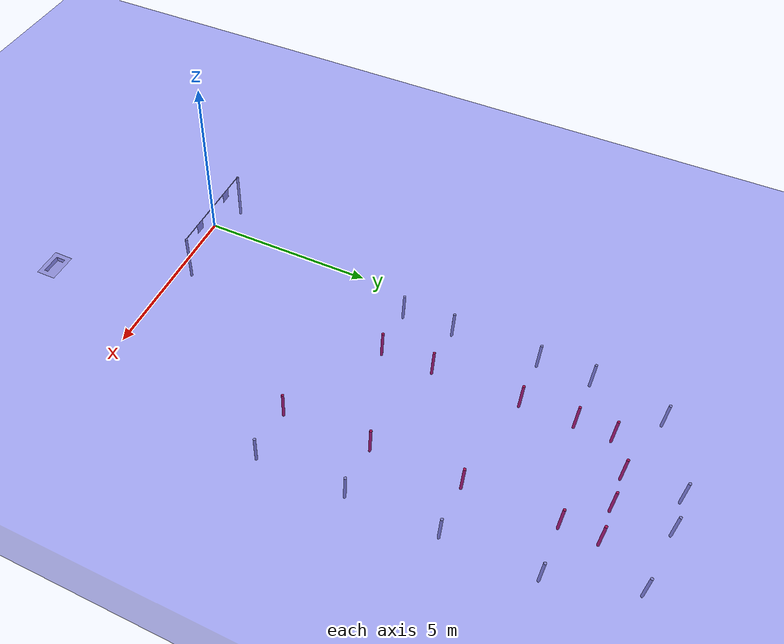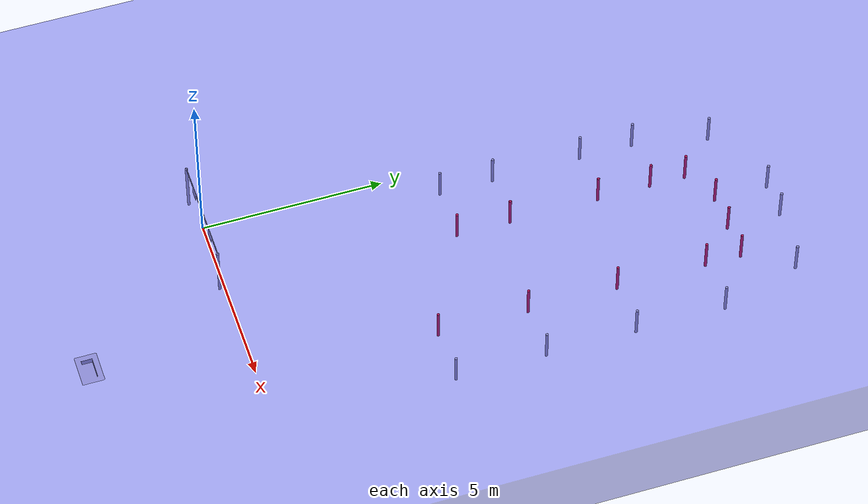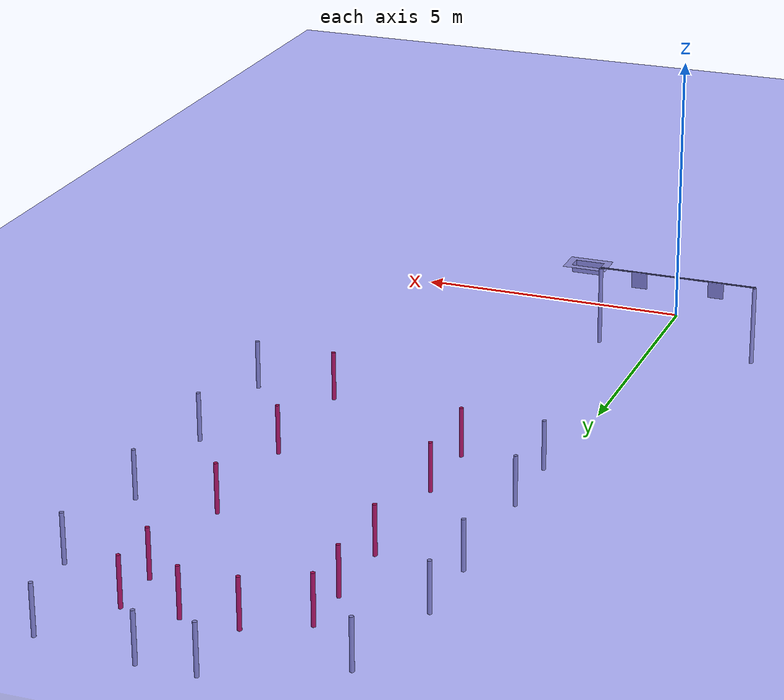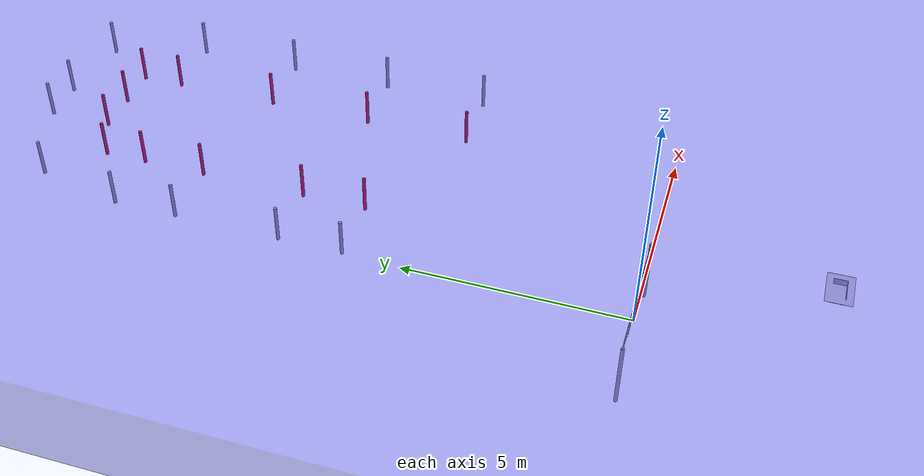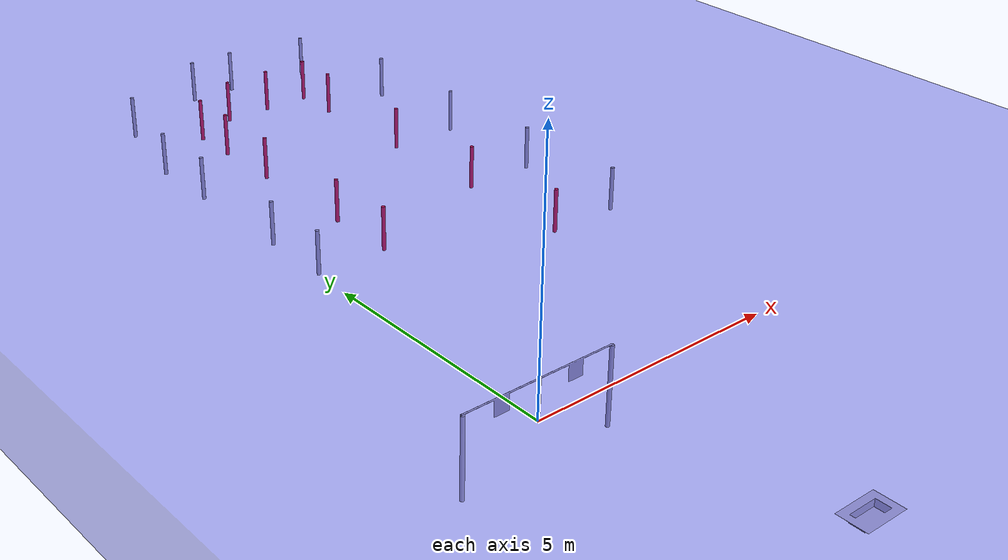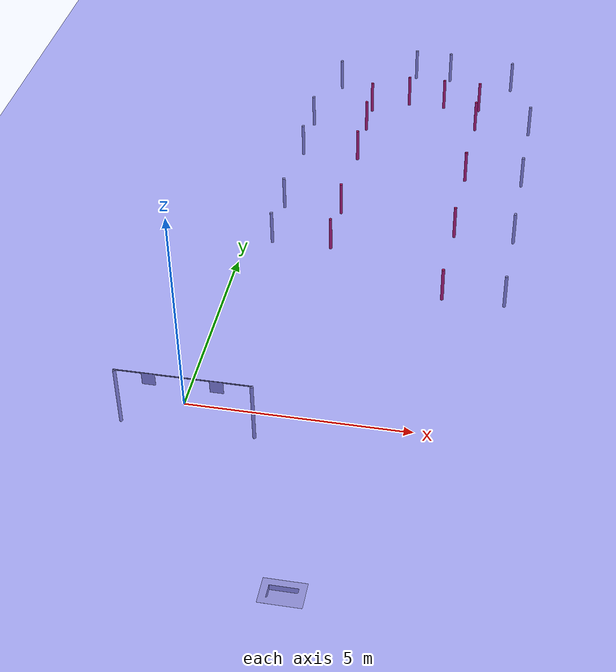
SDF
<sdf version="1.6">
 <world name="robosub_world">
  <scene><ambient>0.0 0.1 0.3</ambient><background>0.53 0.81 0.98</background></scene>
  <physics name="1ms" type="ode">
   <max_step_size>0.001</max_step_size>
   <real_time_factor>1.0</real_time_factor>
  </physics>
  <plugin filename="gz-sim-physics-system" name="gz::sim::systems::Physics"/>
  <plugin filename="gz-sim-user-commands-system" name="gz::sim::systems::UserCommands"/>
  <plugin filename="gz-sim-scene-broadcaster-system" name="gz::sim::systems::SceneBroadcaster"/>
  <plugin filename="gz-sim-contact-system" name="gz::sim::systems::Contact"/>
  <plugin filename="gz-sim-buoyancy-system" name="gz::sim::systems::Buoyancy">
   <graded_buoyancy>
    <default_density>1000</default_density>
    <density_change><above_depth>0</above_depth><density>1</density></density_change>
   </graded_buoyancy>
  </plugin>
  <plugin filename="gz-sim-imu-system" name="gz::sim::systems::Imu"/>
  <plugin filename="gz-sim-sensors-system" name="gz::sim::systems::Sensors">
   <render_engine>ogre2</render_engine>
  </plugin>
  <light type="directional" name="sun">
   <pose>0 0 10 0 0 0</pose>
   <diffuse>1 1 1 1</diffuse>
   <specular>0.5 0.5 0.5 1</specular>
   <attenuation>
    <range>1000</range>
    <constant>0.9</constant>
    <linear>0.01</linear>
    <quadratic>0.001</quadratic>
   </attenuation>
   <direction>-0.5 0.1 -0.9</direction>
  </light>
  <model name="water">
   <static>true</static>
   <pose>0 0 1.02 3.1415 0 3.1415</pose>
   <link name="link">
    <visual name="visual">
     <transparency>0.6</transparency>
     <cast_shadows>false</cast_shadows>
     <geometry><box><size>26 51 2</size></box></geometry>
     <material>
      <ambient>0.2 0.2 0.9 1</ambient>
      <diffuse>0.2 0.2 0.9 1</diffuse>
      <specular>0.1 0.1 0.3 1</specular>
      <emissive>0 0 0 1</emissive>
     </material>
    </visual>
   </link>
  </model>
  <model name="task1">
   <static>true</static>
   <link name="link">
    <visual name="visual">
     <geometry><mesh><uri>../models/tasks/task1model.dae</uri><scale>1 1 1</scale></mesh></geometry>
    </visual>
   </link>
  </model>
  <model name="cannalTask_1">
   <static>true</static>
   <pose>5 5 0 0 0 0</pose>
   <link name="link">
    <visual name="visual">
     <geometry><mesh><uri>../models/tasks/cannalTaskv2.dae</uri><scale>1 1 1</scale></mesh></geometry>
    </visual>
   </link>
  </model>
  <model name="cannalTask_2">
   <static>true</static>
   <pose>5 7.5 0 0 0 0</pose>
   <link name="link">
    <visual name="visual">
     <geometry><mesh><uri>../models/tasks/cannalTaskv2.dae</uri><scale>1 1 1</scale></mesh></geometry>
    </visual>
   </link>
  </model>
  <model name="cannalTask_3">
   <static>true</static>
   <pose>5 10 0 0 0 0</pose>
   <link name="link">
    <visual name="visual">
     <geometry><mesh><uri>../models/tasks/cannalTaskv2.dae</uri><scale>1 1 1</scale></mesh></geometry>
    </visual>
   </link>
  </model>
  <model name="cannalTask_4">
   <static>true</static>
   <pose>5 12.5 0 0 0 0</pose>
   <link name="link">
    <visual name="visual">
     <geometry><mesh><uri>../models/tasks/cannalTaskv2.dae</uri><scale>1 1 1</scale></mesh></geometry>
    </visual>
   </link>
  </model>
  <model name="cannalTask_5">
   <static>true</static>
   <pose>5 13.5 0 0 0 1</pose>
   <link name="link">
    <visual name="visual">
     <geometry><mesh><uri>../models/tasks/cannalTaskv2.dae</uri><scale>1 1 1</scale></mesh></geometry>
    </visual>
   </link>
  </model>
  <model name="cannalTask_6">
   <static>true</static>
   <pose>5 13.5 0 0 0 1</pose>
   <link name="link">
    <visual name="visual">
     <geometry><mesh><uri>../models/tasks/cannalTaskv2.dae</uri><scale>1 1 1</scale></mesh></geometry>
    </visual>
   </link>
  </model>
  <model name="cannalTask_7">
   <static>true</static>
   <pose>4 13.5 0 0 0 1.57</pose>
   <link name="link">
    <visual name="visual">
     <geometry><mesh><uri>../models/tasks/cannalTaskv2.dae</uri><scale>1 1 1</scale></mesh></geometry>
    </visual>
   </link>
  </model>
  <model name="cannalTask_8">
   <static>true</static>
   <pose>3 13.5 0 0 0 1.57</pose>
   <link name="link">
    <visual name="visual">
     <geometry><mesh><uri>../models/tasks/cannalTaskv2.dae</uri><scale>1 1 1</scale></mesh></geometry>
    </visual>
   </link>
  </model>
  <model name="cannalTask_9">
   <static>true</static>
   <pose>2 13 0 0 0 2.35619</pose>
   <link name="link">
    <visual name="visual">
     <geometry><mesh><uri>../models/tasks/cannalTaskv2.dae</uri><scale>1 1 1</scale></mesh></geometry>
    </visual>
   </link>
  </model>
  <model name="cannalTask_10">
   <static>true</static>
   <pose>2 12 0 0 0 3.14</pose>
   <link name="link">
    <visual name="visual">
     <geometry><mesh><uri>../models/tasks/cannalTaskv2.dae</uri><scale>1 1 1</scale></mesh></geometry>
    </visual>
   </link>
  </model>
  <model name="cannalTask_11">
   <static>true</static>
   <pose>2 10.5 0 0 0 3.14</pose>
   <link name="link">
    <visual name="visual">
     <geometry><mesh><uri>../models/tasks/cannalTaskv2.dae</uri><scale>1 1 1</scale></mesh></geometry>
    </visual>
   </link>
  </model>
  <model name="cannalTask_12">
   <static>true</static>
   <pose>2 8 0 0 0 3.14</pose>
   <link name="link">
    <visual name="visual">
     <geometry><mesh><uri>../models/tasks/cannalTaskv2.dae</uri><scale>1 1 1</scale></mesh></geometry>
    </visual>
   </link>
  </model>
  <model name="cannalTask_13">
   <static>true</static>
   <pose>2 6.5 0 0 0 3.14</pose>
   <link name="link">
    <visual name="visual">
     <geometry><mesh><uri>../models/tasks/cannalTaskv2.dae</uri><scale>1 1 1</scale></mesh></geometry>
    </visual>
   </link>
  </model>
  <model name="task_3">
   <static>true</static>
   <pose>3.0 -4.0 -0.848 0 0 0</pose>
   <link name="link">
    <visual name="visual">
     <geometry><mesh><uri>../models/tasks/task3bin.dae</uri><scale>1 1 1</scale></mesh></geometry>
    </visual>
   </link>
  </model>
 </world>
</sdf>
